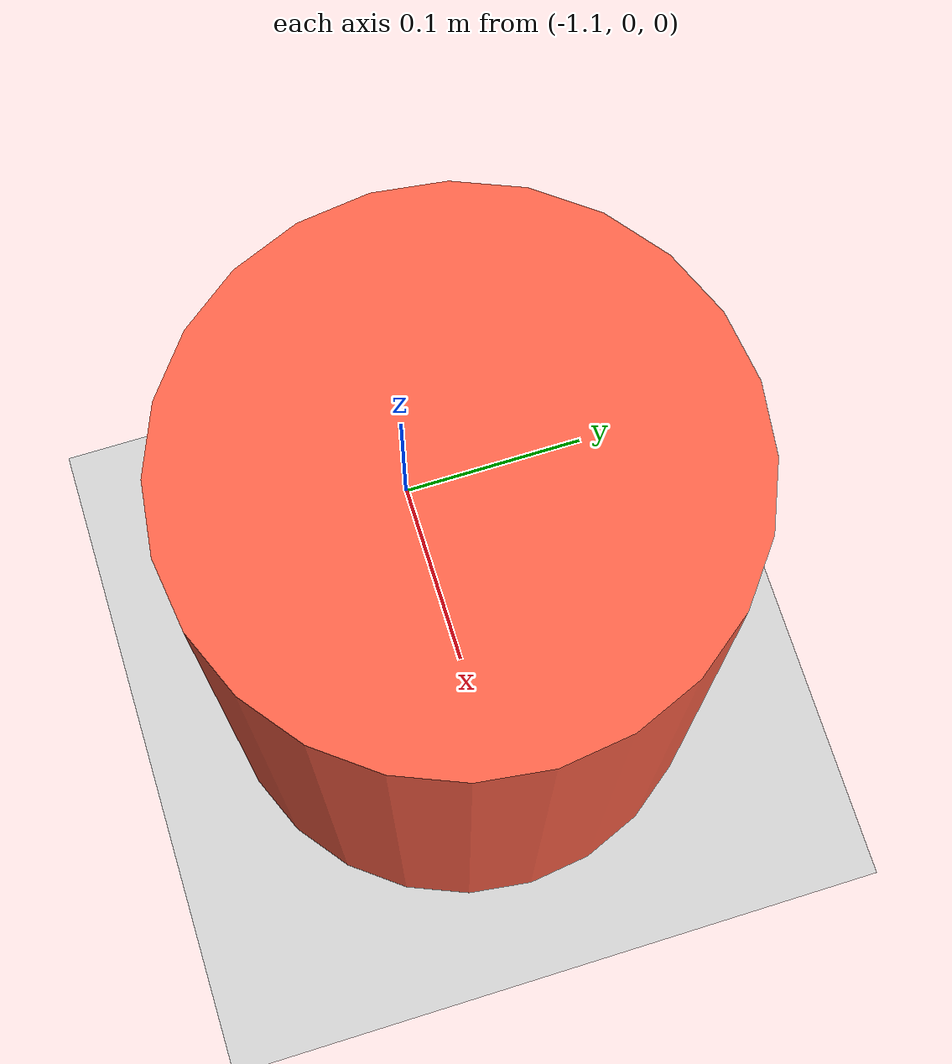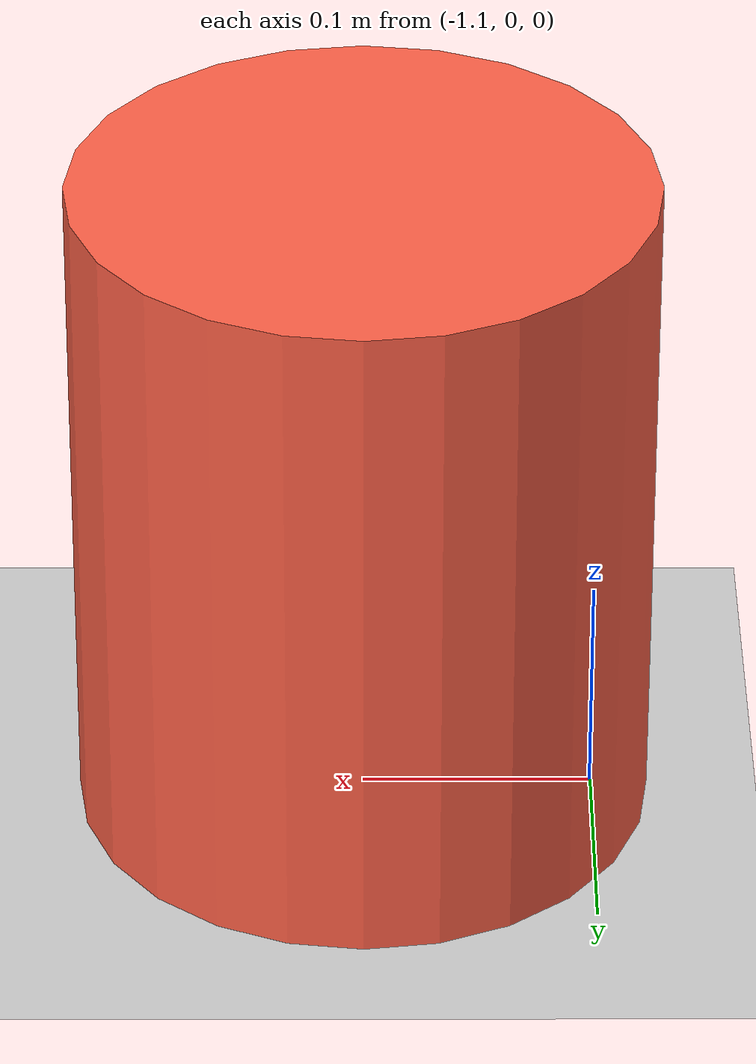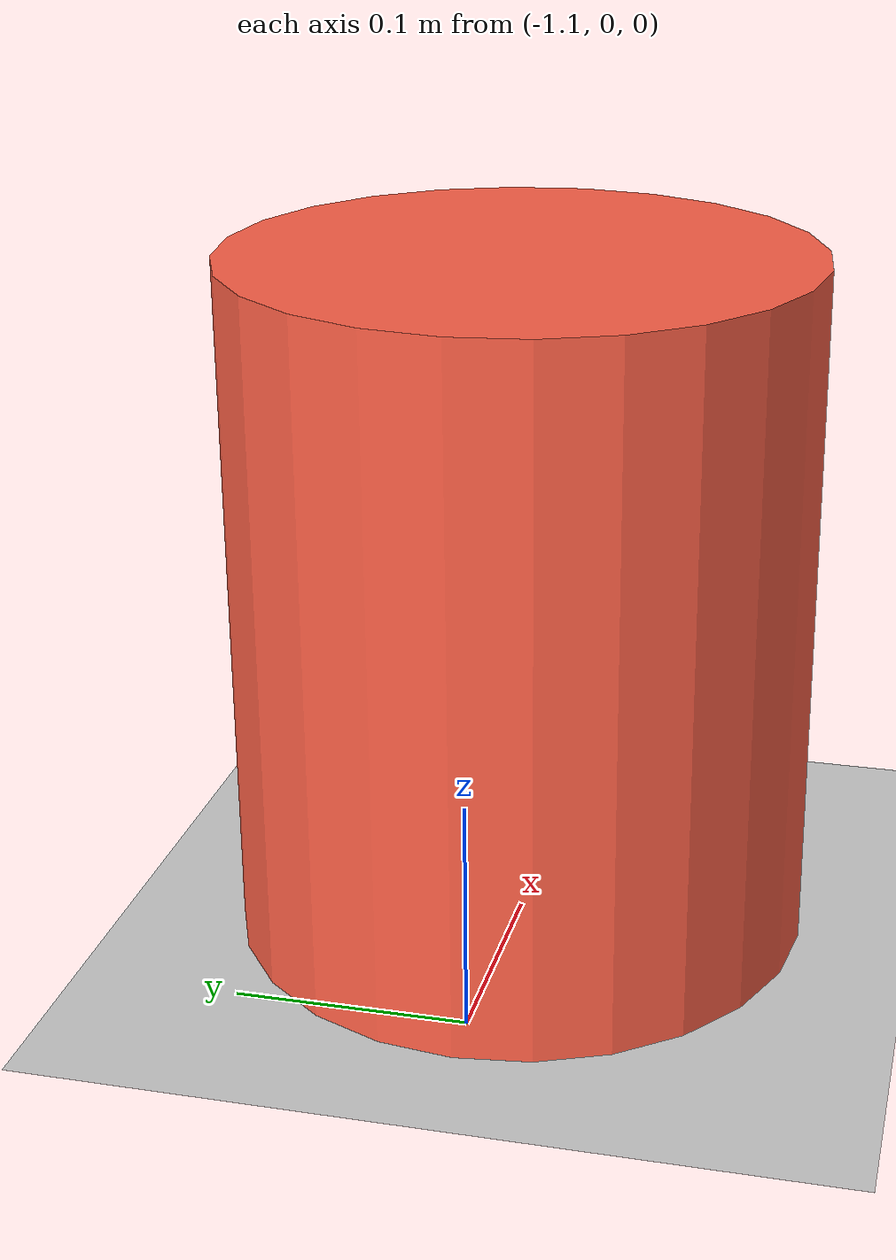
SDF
<?xml version="1.0" ?>
<sdf version='1.4'>
  <world name='default'>

    <physics type='ode'>
      <max_step_size>0.001</max_step_size>
      <real_time_factor>1</real_time_factor>
      <real_time_update_rate>1000</real_time_update_rate>
      <gravity>0 0 -9.8</gravity>
    </physics>

    <spherical_coordinates>
      <surface_model>EARTH_WGS84</surface_model>
      <latitude_deg>0</latitude_deg>
      <longitude_deg>0</longitude_deg>
      <elevation>0</elevation>
      <heading_deg>0</heading_deg>
    </spherical_coordinates>

   <scene>
      <sky>
        <clouds>
          <speed>12</speed>
        </clouds>
      </sky>
   </scene>

    <include>
      <uri>model://sun</uri>
    </include>

    <include>
      <uri>model://ground_plane</uri>
    </include>

    <model name="cylinder">
      <pose>-1 0 0.0 0 0 0</pose>
      <link name="body" >
        <pose>0 0 0.15 0 0 0</pose>
        <inertial>
          <mass>1.0</mass>
          <inertia>
            <!-- http://answers.gazebosim.org/question/4372/the-inertia-matrix-explained/ -->
            <ixx>0.0114</ixx>    <!-- for a box: ixx = 0.083 * mass * (3*r*r + h*h) -->
            <ixy>0.0</ixy>         <!-- for a box: ixy = 0 -->
            <ixz>0.0</ixz>         <!-- for a box: ixz = 0 -->
            <iyy>0.0114</iyy>    <!-- for a box: iyy = 0.083 * mass * (3*r*r + h*h) -->
            <iyz>0.0</iyz>         <!-- for a box: iyz = 0 -->
            <izz>0.00078</izz>    <!-- for a box: izz = 0.5 * mass * (r*r) -->
          </inertia>
        </inertial>
        <collision name="collision">
          <geometry>
            <cylinder>
              <length>0.3</length>
              <radius>0.125</radius>
            </cylinder>
          </geometry>
        </collision>
        <visual name="visual">
          <geometry>
            <cylinder>
              <length>0.3</length>
              <radius>0.125</radius>
            </cylinder>
          </geometry>
          <material>
            <ambient>0 0.0 0.0 1</ambient> <!-- tomato -->
            <diffuse>1.00 0.38 0.28 1</diffuse>
            <specular>0.1 0.1 0.1 1</specular>
            <emissive>0 0 0 0</emissive>
          </material>
        </visual>
        <surface>
          <friction>
            <ode>
              <mu>0.8</mu>
              <mu2>0.8</mu2>
            </ode>
          </friction>
        </surface>
      </link>
      <plugin name="odom" filename="libgazebo_ros_p3d.so" >
        <topicName>object/odom</topicName>
        <bodyName>body</bodyName>
        <updateRate>20.0</updateRate>
      </plugin>
    </model>
  </world>
</sdf>
